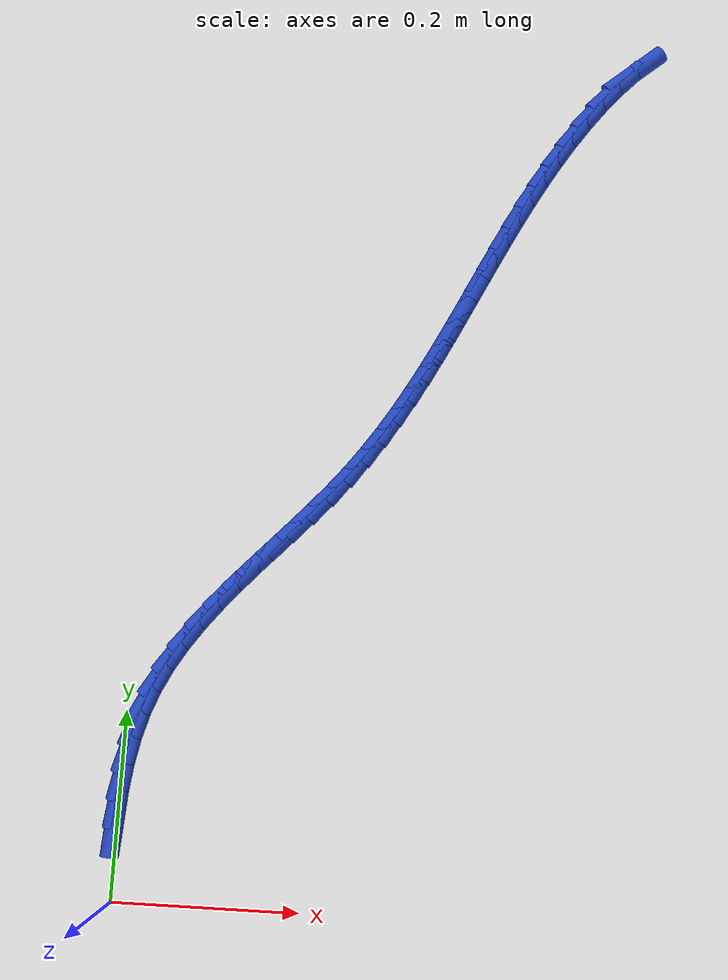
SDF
<sdf version="1.6">
 <world name="default">
  <model name="ground_plane">
   <static>1</static>
   <link name="link">
    <collision name="collision">
     <geometry><plane><normal>0 0 1</normal><size>100 100</size></plane></geometry>
     <surface><friction><ode><mu>100</mu><mu2>50</mu2></ode></friction></surface>
    </collision>
    <visual name="visual">
     <cast_shadows>0</cast_shadows>
     <geometry><plane><normal>0 0 1</normal><size>100 100</size></plane></geometry>
     <material>
      <script><uri>file://media/materials/scripts/gazebo.material</uri><name>Gazebo/WhiteGlow</name></script>
     </material>
    </visual>
   </link>
  </model>
  <model name="line">
   <link name="link_3">
    <pose>-0.0006648223881323449 0.08744025009533356 0.01 0 1.57 1.5020944176287139</pose>
    <collision name="collision">
     <geometry><cylinder><radius>0.01</radius><length>0.08</length></cylinder></geometry>
    </collision>
    <visual name="visual">
     <material>
      <script><name>Gazebo/Blue</name><uri>file://media/materials/scripts/gazebo.material</uri></script>
     </material>
     <geometry><cylinder><radius>0.01</radius><length>0.08</length></cylinder></geometry>
    </visual>
   </link>
   <link name="link_4">
    <pose>0.00132800356336102 0.11640144841998161 0.01 0 1.57 1.4463293020893944</pose>
    <collision name="collision">
     <geometry><cylinder><radius>0.01</radius><length>0.08</length></cylinder></geometry>
    </collision>
    <visual name="visual">
     <material>
      <script><name>Gazebo/Blue</name><uri>file://media/materials/scripts/gazebo.material</uri></script>
     </material>
     <geometry><cylinder><radius>0.01</radius><length>0.08</length></cylinder></geometry>
    </visual>
   </link>
   <link name="link_5">
    <pose>0.004895155564084923 0.14491271182613702 0.01 0 1.57 1.3785046252209874</pose>
    <collision name="collision">
     <geometry><cylinder><radius>0.01</radius><length>0.08</length></cylinder></geometry>
    </collision>
    <visual name="visual">
     <material>
      <script><name>Gazebo/Blue</name><uri>file://media/materials/scripts/gazebo.material</uri></script>
     </material>
     <geometry><cylinder><radius>0.01</radius><length>0.08</length></cylinder></geometry>
    </visual>
   </link>
   <link name="link_6">
    <pose>0.010316899219316444 0.17275974487484322 0.01 0 1.57 1.297601307586867</pose>
    <collision name="collision">
     <geometry><cylinder><radius>0.01</radius><length>0.08</length></cylinder></geometry>
    </collision>
    <visual name="visual">
     <material>
      <script><name>Gazebo/Blue</name><uri>file://media/materials/scripts/gazebo.material</uri></script>
     </material>
     <geometry><cylinder><radius>0.01</radius><length>0.08</length></cylinder></geometry>
    </visual>
   </link>
   <link name="link_7">
    <pose>0.017873500134332667 0.19972825212714362 0.01 0 1.57 1.2032728674085313</pose>
    <collision name="collision">
     <geometry><cylinder><radius>0.01</radius><length>0.08</length></cylinder></geometry>
    </collision>
    <visual name="visual">
     <material>
      <script><name>Gazebo/Blue</name><uri>file://media/materials/scripts/gazebo.material</uri></script>
     </material>
     <geometry><cylinder><radius>0.01</radius><length>0.08</length></cylinder></geometry>
    </visual>
   </link>
   <link name="link_8">
    <pose>0.02783782909656303 0.22560849781510114 0.01 0 1.57 1.106756338111016</pose>
    <collision name="collision">
     <geometry><cylinder><radius>0.01</radius><length>0.08</length></cylinder></geometry>
    </collision>
    <visual name="visual">
     <material>
      <script><name>Gazebo/Blue</name><uri>file://media/materials/scripts/gazebo.material</uri></script>
     </material>
     <geometry><cylinder><radius>0.01</radius><length>0.08</length></cylinder></geometry>
    </visual>
   </link>
   <link name="link_9">
    <pose>0.040221605151668866 0.2503517732647848 0.01 0 1.57 1.0231207383510295</pose>
    <collision name="collision">
     <geometry><cylinder><radius>0.01</radius><length>0.08</length></cylinder></geometry>
    </collision>
    <visual name="visual">
     <material>
      <script><name>Gazebo/Blue</name><uri>file://media/materials/scripts/gazebo.material</uri></script>
     </material>
     <geometry><cylinder><radius>0.01</radius><length>0.08</length></cylinder></geometry>
    </visual>
   </link>
   <link name="link_10">
    <pose>0.054711789538546045 0.2741096166224646 0.01 0 1.57 0.954018145685561</pose>
    <collision name="collision">
     <geometry><cylinder><radius>0.01</radius><length>0.08</length></cylinder></geometry>
    </collision>
    <visual name="visual">
     <material>
      <script><name>Gazebo/Blue</name><uri>file://media/materials/scripts/gazebo.material</uri></script>
     </material>
     <geometry><cylinder><radius>0.01</radius><length>0.08</length></cylinder></geometry>
    </visual>
   </link>
   <link name="link_11">
    <pose>0.07097503768646142 0.29704608666894217 0.01 0 1.57 0.8993581174436116</pose>
    <collision name="collision">
     <geometry><cylinder><radius>0.01</radius><length>0.08</length></cylinder></geometry>
    </collision>
    <visual name="visual">
     <material>
      <script><name>Gazebo/Blue</name><uri>file://media/materials/scripts/gazebo.material</uri></script>
     </material>
     <geometry><cylinder><radius>0.01</radius><length>0.08</length></cylinder></geometry>
    </visual>
   </link>
   <link name="link_12">
    <pose>0.08867800502468182 0.31932524218501945 0.01 0 1.57 0.8585900104488771</pose>
    <collision name="collision">
     <geometry><cylinder><radius>0.01</radius><length>0.08</length></cylinder></geometry>
    </collision>
    <visual name="visual">
     <material>
      <script><name>Gazebo/Blue</name><uri>file://media/materials/scripts/gazebo.material</uri></script>
     </material>
     <geometry><cylinder><radius>0.01</radius><length>0.08</length></cylinder></geometry>
    </visual>
   </link>
   <link name="link_13">
    <pose>0.10748734698247402 0.3411111419514979 0.01 0 1.57 0.8310383050136876</pose>
    <collision name="collision">
     <geometry><cylinder><radius>0.01</radius><length>0.08</length></cylinder></geometry>
    </collision>
    <visual name="visual">
     <material>
      <script><name>Gazebo/Blue</name><uri>file://media/materials/scripts/gazebo.material</uri></script>
     </material>
     <geometry><cylinder><radius>0.01</radius><length>0.08</length></cylinder></geometry>
    </visual>
   </link>
   <link name="link_14">
    <pose>0.12706971898910494 0.36256784474917947 0.01 0 1.57 0.8161170331663543</pose>
    <collision name="collision">
     <geometry><cylinder><radius>0.01</radius><length>0.08</length></cylinder></geometry>
    </collision>
    <visual name="visual">
     <material>
      <script><name>Gazebo/Blue</name><uri>file://media/materials/scripts/gazebo.material</uri></script>
     </material>
     <geometry><cylinder><radius>0.01</radius><length>0.08</length></cylinder></geometry>
    </visual>
   </link>
   <link name="link_15">
    <pose>0.14709177647384136 0.3838594093588659 0.01 0 1.57 0.8134477370516059</pose>
    <collision name="collision">
     <geometry><cylinder><radius>0.01</radius><length>0.08</length></cylinder></geometry>
    </collision>
    <visual name="visual">
     <material>
      <script><name>Gazebo/Blue</name><uri>file://media/materials/scripts/gazebo.material</uri></script>
     </material>
     <geometry><cylinder><radius>0.01</radius><length>0.08</length></cylinder></geometry>
    </visual>
   </link>
   <link name="link_16">
    <pose>0.1672201748659501 0.40514989456135897 0.01 0 1.57 0.8229110886200798</pose>
    <collision name="collision">
     <geometry><cylinder><radius>0.01</radius><length>0.08</length></cylinder></geometry>
    </collision>
    <visual name="visual">
     <material>
      <script><name>Gazebo/Blue</name><uri>file://media/materials/scripts/gazebo.material</uri></script>
     </material>
     <geometry><cylinder><radius>0.01</radius><length>0.08</length></cylinder></geometry>
    </visual>
   </link>
   <link name="link_17">
    <pose>0.18712156959469792 0.42660335913746006 0.01 0 1.57 0.84465178208153</pose>
    <collision name="collision">
     <geometry><cylinder><radius>0.01</radius><length>0.08</length></cylinder></geometry>
    </collision>
    <visual name="visual">
     <material>
      <script><name>Gazebo/Blue</name><uri>file://media/materials/scripts/gazebo.material</uri></script>
     </material>
     <geometry><cylinder><radius>0.01</radius><length>0.08</length></cylinder></geometry>
    </visual>
   </link>
   <link name="link_18">
    <pose>0.20646261608935187 0.4483838618679715 0.01 0 1.57 0.8790407648653263</pose>
    <collision name="collision">
     <geometry><cylinder><radius>0.01</radius><length>0.08</length></cylinder></geometry>
    </collision>
    <visual name="visual">
     <material>
      <script><name>Gazebo/Blue</name><uri>file://media/materials/scripts/gazebo.material</uri></script>
     </material>
     <geometry><cylinder><radius>0.01</radius><length>0.08</length></cylinder></geometry>
    </visual>
   </link>
   <link name="link_19">
    <pose>0.22490999089616565 0.4706554510278358 0.01 0 1.57 0.9229865366737087</pose>
    <collision name="collision">
     <geometry><cylinder><radius>0.01</radius><length>0.08</length></cylinder></geometry>
    </collision>
    <visual name="visual">
     <material>
      <script><name>Gazebo/Blue</name><uri>file://media/materials/scripts/gazebo.material</uri></script>
     </material>
     <geometry><cylinder><radius>0.01</radius><length>0.08</length></cylinder></geometry>
    </visual>
   </link>
   <link name="link_20">
    <pose>0.24222446091529953 0.4935353642381594 0.01 0 1.57 0.9647569641755463</pose>
    <collision name="collision">
     <geometry><cylinder><radius>0.01</radius><length>0.08</length></cylinder></geometry>
    </collision>
    <visual name="visual">
     <material>
      <script><name>Gazebo/Blue</name><uri>file://media/materials/scripts/gazebo.material</uri></script>
     </material>
     <geometry><cylinder><radius>0.01</radius><length>0.08</length></cylinder></geometry>
    </visual>
   </link>
   <link name="link_21">
    <pose>0.25847702693704133 0.5169864954425484 0.01 0 1.57 1.0016227718409108</pose>
    <collision name="collision">
     <geometry><cylinder><radius>0.01</radius><length>0.08</length></cylinder></geometry>
    </collision>
    <visual name="visual">
     <material>
      <script><name>Gazebo/Blue</name><uri>file://media/materials/scripts/gazebo.material</uri></script>
     </material>
     <geometry><cylinder><radius>0.01</radius><length>0.08</length></cylinder></geometry>
    </visual>
   </link>
   <link name="link_22">
    <pose>0.27380253844907126 0.5409399733807645 0.01 0 1.57 1.0333630666071587</pose>
    <collision name="collision">
     <geometry><cylinder><radius>0.01</radius><length>0.08</length></cylinder></geometry>
    </collision>
    <visual name="visual">
     <material>
      <script><name>Gazebo/Blue</name><uri>file://media/materials/scripts/gazebo.material</uri></script>
     </material>
     <geometry><cylinder><radius>0.01</radius><length>0.08</length></cylinder></geometry>
    </visual>
   </link>
   <link name="link_23">
    <pose>0.2883358449390694 0.56532692679257 0.01 0 1.57 1.059844360493518</pose>
    <collision name="collision">
     <geometry><cylinder><radius>0.01</radius><length>0.08</length></cylinder></geometry>
    </collision>
    <visual name="visual">
     <material>
      <script><name>Gazebo/Blue</name><uri>file://media/materials/scripts/gazebo.material</uri></script>
     </material>
     <geometry><cylinder><radius>0.01</radius><length>0.08</length></cylinder></geometry>
    </visual>
   </link>
   <link name="link_24">
    <pose>0.3022117958947165 0.5900784844177276 0.01 0 1.57 1.0809978505442215</pose>
    <collision name="collision">
     <geometry><cylinder><radius>0.01</radius><length>0.08</length></cylinder></geometry>
    </collision>
    <visual name="visual">
     <material>
      <script><name>Gazebo/Blue</name><uri>file://media/materials/scripts/gazebo.material</uri></script>
     </material>
     <geometry><cylinder><radius>0.01</radius><length>0.08</length></cylinder></geometry>
    </visual>
   </link>
   <link name="link_25">
    <pose>0.31556524080369247 0.6151257749959993 0.01 0 1.57 1.0967982440395854</pose>
    <collision name="collision">
     <geometry><cylinder><radius>0.01</radius><length>0.08</length></cylinder></geometry>
    </collision>
    <visual name="visual">
     <material>
      <script><name>Gazebo/Blue</name><uri>file://media/materials/scripts/gazebo.material</uri></script>
     </material>
     <geometry><cylinder><radius>0.01</radius><length>0.08</length></cylinder></geometry>
    </visual>
   </link>
   <link name="link_26">
    <pose>0.3285310291536775 0.640399927267147 0.01 0 1.57 1.107245924653396</pose>
    <collision name="collision">
     <geometry><cylinder><radius>0.01</radius><length>0.08</length></cylinder></geometry>
    </collision>
    <visual name="visual">
     <material>
      <script><name>Gazebo/Blue</name><uri>file://media/materials/scripts/gazebo.material</uri></script>
     </material>
     <geometry><cylinder><radius>0.01</radius><length>0.08</length></cylinder></geometry>
    </visual>
   </link>
   <link name="link_27">
    <pose>0.34124401043235203 0.6658320699709334 0.01 0 1.57 1.1123533730437685</pose>
    <collision name="collision">
     <geometry><cylinder><radius>0.01</radius><length>0.08</length></cylinder></geometry>
    </collision>
    <visual name="visual">
     <material>
      <script><name>Gazebo/Blue</name><uri>file://media/materials/scripts/gazebo.material</uri></script>
     </material>
     <geometry><cylinder><radius>0.01</radius><length>0.08</length></cylinder></geometry>
    </visual>
   </link>
   <link name="link_28">
    <pose>0.35383903412739637 0.6913533318471204 0.01 0 1.57 1.1121361780249635</pose>
    <collision name="collision">
     <geometry><cylinder><radius>0.01</radius><length>0.08</length></cylinder></geometry>
    </collision>
    <visual name="visual">
     <material>
      <script><name>Gazebo/Blue</name><uri>file://media/materials/scripts/gazebo.material</uri></script>
     </material>
     <geometry><cylinder><radius>0.01</radius><length>0.08</length></cylinder></geometry>
    </visual>
   </link>
   <link name="link_29">
    <pose>0.36645094972649067 0.7168948416354702 0.01 0 1.57 1.1066086731521811</pose>
    <collision name="collision">
     <geometry><cylinder><radius>0.01</radius><length>0.08</length></cylinder></geometry>
    </collision>
    <visual name="visual">
     <material>
      <script><name>Gazebo/Blue</name><uri>file://media/materials/scripts/gazebo.material</uri></script>
     </material>
     <geometry><cylinder><radius>0.01</radius><length>0.08</length></cylinder></geometry>
    </visual>
   </link>
   <link name="link_30">
    <pose>0.37921460671731505 0.7423877280757453 0.01 0 1.57 1.09578412580983</pose>
    <collision name="collision">
     <geometry><cylinder><radius>0.01</radius><length>0.08</length></cylinder></geometry>
    </collision>
    <visual name="visual">
     <material>
      <script><name>Gazebo/Blue</name><uri>file://media/materials/scripts/gazebo.material</uri></script>
     </material>
     <geometry><cylinder><radius>0.01</radius><length>0.08</length></cylinder></geometry>
    </visual>
   </link>
   <link name="link_31">
    <pose>0.39226485458755 0.7677631199077075 0.01 0 1.57 1.0796793932819586</pose>
    <collision name="collision">
     <geometry><cylinder><radius>0.01</radius><length>0.08</length></cylinder></geometry>
    </collision>
    <visual name="visual">
     <material>
      <script><name>Gazebo/Blue</name><uri>file://media/materials/scripts/gazebo.material</uri></script>
     </material>
     <geometry><cylinder><radius>0.01</radius><length>0.08</length></cylinder></geometry>
    </visual>
   </link>
   <link name="link_32">
    <pose>0.4057365428248756 0.7929521458711193 0.01 0 1.57 1.0583239445686288</pose>
    <collision name="collision">
     <geometry><cylinder><radius>0.01</radius><length>0.08</length></cylinder></geometry>
    </collision>
    <visual name="visual">
     <material>
      <script><name>Gazebo/Blue</name><uri>file://media/materials/scripts/gazebo.material</uri></script>
     </material>
     <geometry><cylinder><radius>0.01</radius><length>0.08</length></cylinder></geometry>
    </visual>
   </link>
   <link name="link_33">
    <pose>0.4197645209169723 0.8178859347057429 0.01 0 1.57 1.0317730345256997</pose>
    <collision name="collision">
     <geometry><cylinder><radius>0.01</radius><length>0.08</length></cylinder></geometry>
    </collision>
    <visual name="visual">
     <material>
      <script><name>Gazebo/Blue</name><uri>file://media/materials/scripts/gazebo.material</uri></script>
     </material>
     <geometry><cylinder><radius>0.01</radius><length>0.08</length></cylinder></geometry>
    </visual>
   </link>
   <link name="link_34">
    <pose>0.43448363835152015 0.8424956151513404 0.01 0 1.57 1.0001245244347499</pose>
    <collision name="collision">
     <geometry><cylinder><radius>0.01</radius><length>0.08</length></cylinder></geometry>
    </collision>
    <visual name="visual">
     <material>
      <script><name>Gazebo/Blue</name><uri>file://media/materials/scripts/gazebo.material</uri></script>
     </material>
     <geometry><cylinder><radius>0.01</radius><length>0.08</length></cylinder></geometry>
    </visual>
   </link>
   <link name="link_35">
    <pose>0.45002874461619946 0.866712315947674 0.01 0 1.57 0.9635383113401117</pose>
    <collision name="collision">
     <geometry><cylinder><radius>0.01</radius><length>0.08</length></cylinder></geometry>
    </collision>
    <visual name="visual">
     <material>
      <script><name>Gazebo/Blue</name><uri>file://media/materials/scripts/gazebo.material</uri></script>
     </material>
     <geometry><cylinder><radius>0.01</radius><length>0.08</length></cylinder></geometry>
    </visual>
   </link>
   <link name="link_36">
    <pose>0.4665346891986907 0.8904671658345061 0.01 0 1.57 0.9222548509347372</pose>
    <collision name="collision">
     <geometry><cylinder><radius>0.01</radius><length>0.08</length></cylinder></geometry>
    </collision>
    <visual name="visual">
     <material>
      <script><name>Gazebo/Blue</name><uri>file://media/materials/scripts/gazebo.material</uri></script>
     </material>
     <geometry><cylinder><radius>0.01</radius><length>0.08</length></cylinder></geometry>
    </visual>
   </link>
   <link name="link_37">
    <pose>0.48413632059294864 0.9136912099941349 0.01 0 1.57 0.87240958952419</pose>
    <collision name="collision">
     <geometry><cylinder><radius>0.01</radius><length>0.08</length></cylinder></geometry>
    </collision>
    <visual name="visual">
     <material>
      <script><name>Gazebo/Blue</name><uri>file://media/materials/scripts/gazebo.material</uri></script>
     </material>
     <geometry><cylinder><radius>0.01</radius><length>0.08</length></cylinder></geometry>
    </visual>
   </link>
   <link name="link_38">
    <pose>0.5029661638170291 0.9361201239490611 0.01 0 1.57 0.7993963007662317</pose>
    <collision name="collision">
     <geometry><cylinder><radius>0.01</radius><length>0.08</length></cylinder></geometry>
    </collision>
    <visual name="visual">
     <material>
      <script><name>Gazebo/Blue</name><uri>file://media/materials/scripts/gazebo.material</uri></script>
     </material>
     <geometry><cylinder><radius>0.01</radius><length>0.08</length></cylinder></geometry>
    </visual>
   </link>
   <link name="link_39">
    <pose>0.5231494530218614 0.9568765300670227 0.01 0 1.57 0.6957220276804327</pose>
    <collision name="collision">
     <geometry><cylinder><radius>0.01</radius><length>0.08</length></cylinder></geometry>
    </collision>
    <visual name="visual">
     <material>
      <script><name>Gazebo/Blue</name><uri>file://media/materials/scripts/gazebo.material</uri></script>
     </material>
     <geometry><cylinder><radius>0.01</radius><length>0.08</length></cylinder></geometry>
    </visual>
   </link>
  </model>
 </world>
</sdf>
